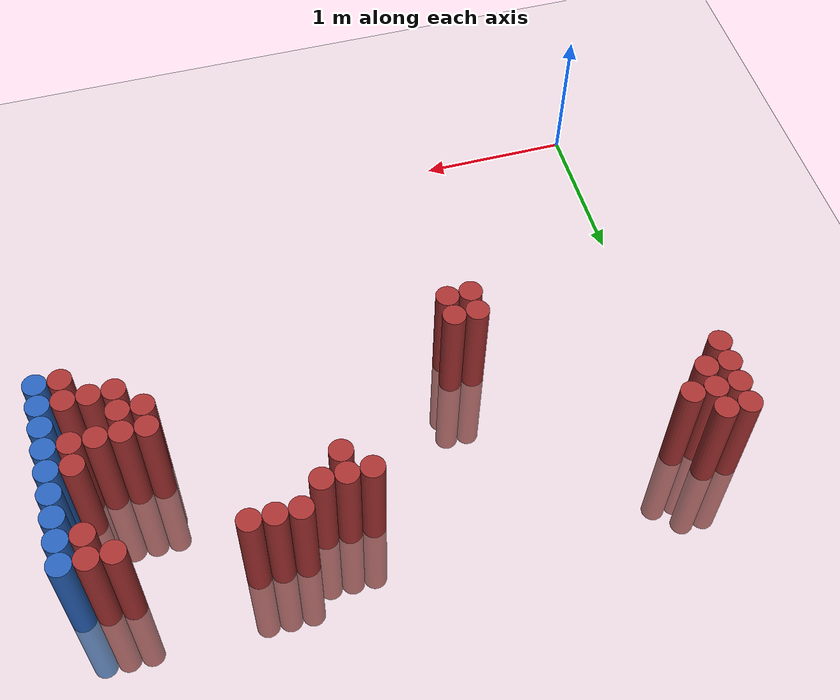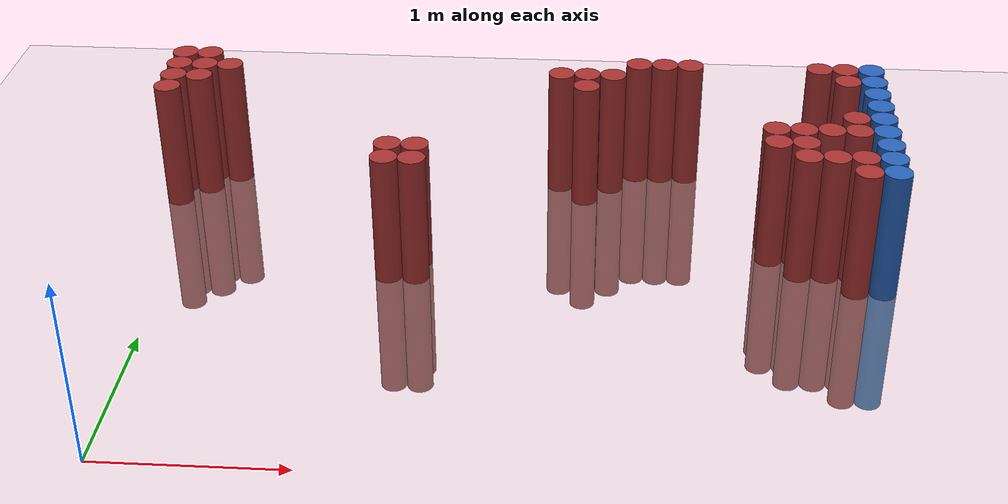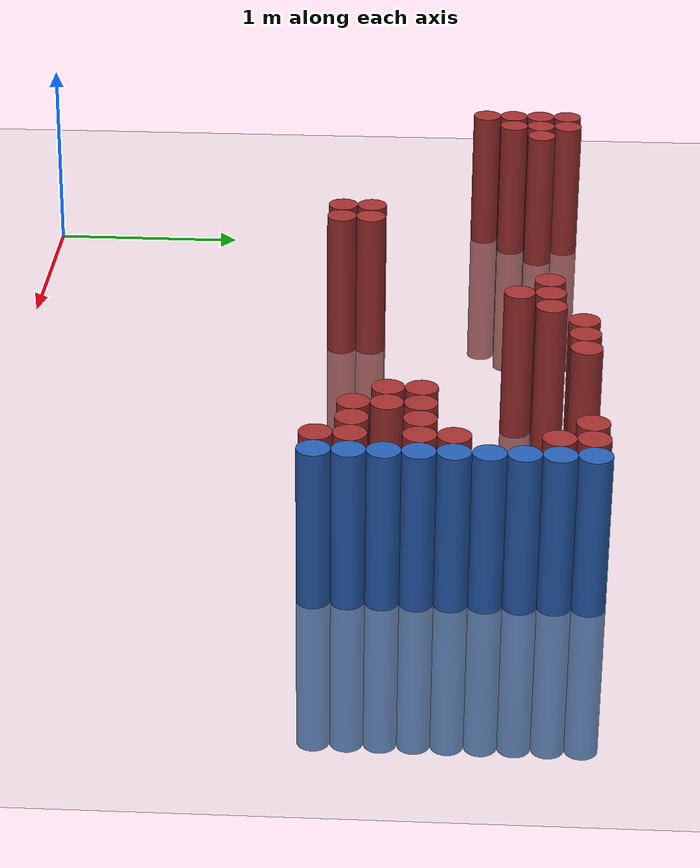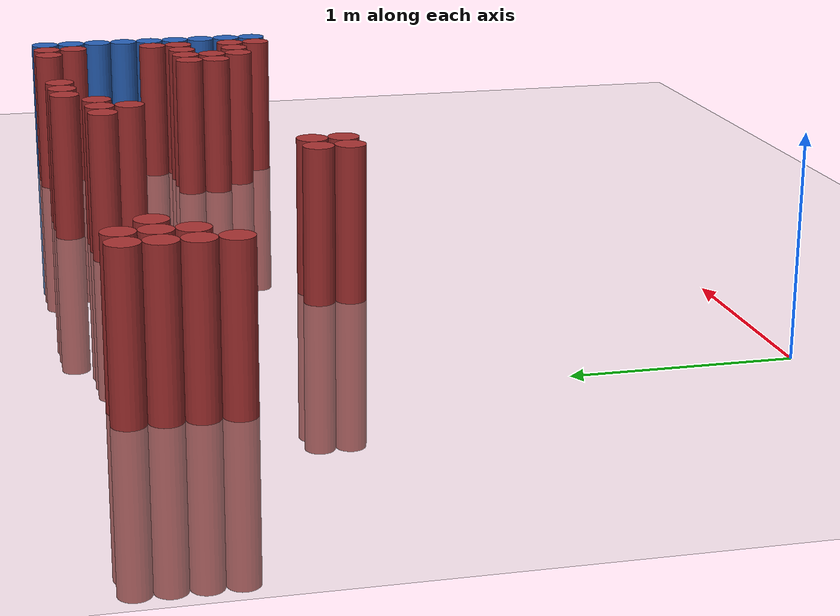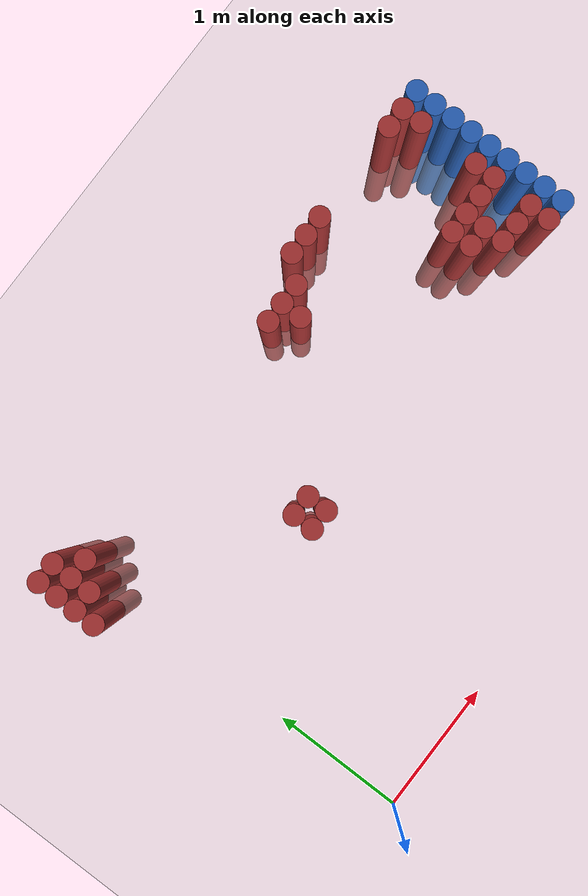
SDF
<sdf version="1.6">
 <world name="default">
  <model name="ground_plane">
   <static>1</static>
   <link name="link">
    <collision name="collision">
     <geometry><plane><normal>0 0 1</normal><size>100 100</size></plane></geometry>
     <surface><friction><ode><mu>100</mu><mu2>50</mu2></ode></friction></surface>
    </collision>
    <visual name="visual">
     <cast_shadows>0</cast_shadows>
     <geometry><plane><normal>0 0 1</normal><size>100 100</size></plane></geometry>
     <material>
      <script><uri>file://media/materials/scripts/gazebo.material</uri><name>Gazebo/Grey</name></script>
     </material>
    </visual>
   </link>
  </model>
  <model name="unit_cylinder_136">
   <static>1</static>
   <pose>3.925000 1.675000 0.000000 0.000000 0.000000 0.000000</pose>
   <link name="link">
    <inertial>
     <mass>1</mass>
     <inertia><ixx>0.145833</ixx><ixy>0</ixy><ixz>0</ixz><iyy>0.145833</iyy><iyz>0</iyz><izz>0.125</izz></inertia>
    </inertial>
    <collision name="collision">
     <geometry><cylinder><radius>0.075000</radius><length>1.5</length></cylinder></geometry>
    </collision>
    <visual name="visual">
     <geometry><cylinder><radius>0.075000</radius><length>1.5</length></cylinder></geometry>
     <material>
      <ambient>0.152000 0.379000 0.720000 1</ambient>
      <diffuse>0.152000 0.379000 0.720000 1</diffuse>
     </material>
     <material>
      <script><name>Gazebo/Grey</name><uri>file://media/materials/scripts/gazebo.material</uri></script>
     </material>
    </visual>
   </link>
  </model>
  <model name="unit_cylinder_138">
   <static>1</static>
   <pose>3.925000 1.825000 0.000000 0.000000 0.000000 0.000000</pose>
   <link name="link">
    <inertial>
     <mass>1</mass>
     <inertia><ixx>0.145833</ixx><ixy>0</ixy><ixz>0</ixz><iyy>0.145833</iyy><iyz>0</iyz><izz>0.125</izz></inertia>
    </inertial>
    <collision name="collision">
     <geometry><cylinder><radius>0.075000</radius><length>1.5</length></cylinder></geometry>
    </collision>
    <visual name="visual">
     <geometry><cylinder><radius>0.075000</radius><length>1.5</length></cylinder></geometry>
     <material>
      <ambient>0.152000 0.379000 0.720000 1</ambient>
      <diffuse>0.152000 0.379000 0.720000 1</diffuse>
     </material>
     <material>
      <script><name>Gazebo/Grey</name><uri>file://media/materials/scripts/gazebo.material</uri></script>
     </material>
    </visual>
   </link>
  </model>
  <model name="unit_cylinder_140">
   <static>1</static>
   <pose>3.925000 1.975000 0.000000 0.000000 0.000000 0.000000</pose>
   <link name="link">
    <inertial>
     <mass>1</mass>
     <inertia><ixx>0.145833</ixx><ixy>0</ixy><ixz>0</ixz><iyy>0.145833</iyy><iyz>0</iyz><izz>0.125</izz></inertia>
    </inertial>
    <collision name="collision">
     <geometry><cylinder><radius>0.075000</radius><length>1.5</length></cylinder></geometry>
    </collision>
    <visual name="visual">
     <geometry><cylinder><radius>0.075000</radius><length>1.5</length></cylinder></geometry>
     <material>
      <ambient>0.152000 0.379000 0.720000 1</ambient>
      <diffuse>0.152000 0.379000 0.720000 1</diffuse>
     </material>
     <material>
      <script><name>Gazebo/Grey</name><uri>file://media/materials/scripts/gazebo.material</uri></script>
     </material>
    </visual>
   </link>
  </model>
  <model name="unit_cylinder_142">
   <static>1</static>
   <pose>3.925000 2.125000 0.000000 0.000000 0.000000 0.000000</pose>
   <link name="link">
    <inertial>
     <mass>1</mass>
     <inertia><ixx>0.145833</ixx><ixy>0</ixy><ixz>0</ixz><iyy>0.145833</iyy><iyz>0</iyz><izz>0.125</izz></inertia>
    </inertial>
    <collision name="collision">
     <geometry><cylinder><radius>0.075000</radius><length>1.5</length></cylinder></geometry>
    </collision>
    <visual name="visual">
     <geometry><cylinder><radius>0.075000</radius><length>1.5</length></cylinder></geometry>
     <material>
      <ambient>0.152000 0.379000 0.720000 1</ambient>
      <diffuse>0.152000 0.379000 0.720000 1</diffuse>
     </material>
     <material>
      <script><name>Gazebo/Grey</name><uri>file://media/materials/scripts/gazebo.material</uri></script>
     </material>
    </visual>
   </link>
  </model>
  <model name="unit_cylinder_144">
   <static>1</static>
   <pose>3.925000 2.275000 0.000000 0.000000 0.000000 0.000000</pose>
   <link name="link">
    <inertial>
     <mass>1</mass>
     <inertia><ixx>0.145833</ixx><ixy>0</ixy><ixz>0</ixz><iyy>0.145833</iyy><iyz>0</iyz><izz>0.125</izz></inertia>
    </inertial>
    <collision name="collision">
     <geometry><cylinder><radius>0.075000</radius><length>1.5</length></cylinder></geometry>
    </collision>
    <visual name="visual">
     <geometry><cylinder><radius>0.075000</radius><length>1.5</length></cylinder></geometry>
     <material>
      <ambient>0.152000 0.379000 0.720000 1</ambient>
      <diffuse>0.152000 0.379000 0.720000 1</diffuse>
     </material>
     <material>
      <script><name>Gazebo/Grey</name><uri>file://media/materials/scripts/gazebo.material</uri></script>
     </material>
    </visual>
   </link>
  </model>
  <model name="unit_cylinder_146">
   <static>1</static>
   <pose>3.925000 2.425000 0.000000 0.000000 0.000000 0.000000</pose>
   <link name="link">
    <inertial>
     <mass>1</mass>
     <inertia><ixx>0.145833</ixx><ixy>0</ixy><ixz>0</ixz><iyy>0.145833</iyy><iyz>0</iyz><izz>0.125</izz></inertia>
    </inertial>
    <collision name="collision">
     <geometry><cylinder><radius>0.075000</radius><length>1.5</length></cylinder></geometry>
    </collision>
    <visual name="visual">
     <geometry><cylinder><radius>0.075000</radius><length>1.5</length></cylinder></geometry>
     <material>
      <ambient>0.152000 0.379000 0.720000 1</ambient>
      <diffuse>0.152000 0.379000 0.720000 1</diffuse>
     </material>
     <material>
      <script><name>Gazebo/Grey</name><uri>file://media/materials/scripts/gazebo.material</uri></script>
     </material>
    </visual>
   </link>
  </model>
  <model name="unit_cylinder_148">
   <static>1</static>
   <pose>3.925000 2.575000 0.000000 0.000000 0.000000 0.000000</pose>
   <link name="link">
    <inertial>
     <mass>1</mass>
     <inertia><ixx>0.145833</ixx><ixy>0</ixy><ixz>0</ixz><iyy>0.145833</iyy><iyz>0</iyz><izz>0.125</izz></inertia>
    </inertial>
    <collision name="collision">
     <geometry><cylinder><radius>0.075000</radius><length>1.5</length></cylinder></geometry>
    </collision>
    <visual name="visual">
     <geometry><cylinder><radius>0.075000</radius><length>1.5</length></cylinder></geometry>
     <material>
      <ambient>0.152000 0.379000 0.720000 1</ambient>
      <diffuse>0.152000 0.379000 0.720000 1</diffuse>
     </material>
     <material>
      <script><name>Gazebo/Grey</name><uri>file://media/materials/scripts/gazebo.material</uri></script>
     </material>
    </visual>
   </link>
  </model>
  <model name="unit_cylinder_150">
   <static>1</static>
   <pose>3.925000 2.725000 0.000000 0.000000 0.000000 0.000000</pose>
   <link name="link">
    <inertial>
     <mass>1</mass>
     <inertia><ixx>0.145833</ixx><ixy>0</ixy><ixz>0</ixz><iyy>0.145833</iyy><iyz>0</iyz><izz>0.125</izz></inertia>
    </inertial>
    <collision name="collision">
     <geometry><cylinder><radius>0.075000</radius><length>1.5</length></cylinder></geometry>
    </collision>
    <visual name="visual">
     <geometry><cylinder><radius>0.075000</radius><length>1.5</length></cylinder></geometry>
     <material>
      <ambient>0.152000 0.379000 0.720000 1</ambient>
      <diffuse>0.152000 0.379000 0.720000 1</diffuse>
     </material>
     <material>
      <script><name>Gazebo/Grey</name><uri>file://media/materials/scripts/gazebo.material</uri></script>
     </material>
    </visual>
   </link>
  </model>
  <model name="unit_cylinder_152">
   <static>1</static>
   <pose>3.925000 2.875000 0.000000 0.000000 0.000000 0.000000</pose>
   <link name="link">
    <inertial>
     <mass>1</mass>
     <inertia><ixx>0.145833</ixx><ixy>0</ixy><ixz>0</ixz><iyy>0.145833</iyy><iyz>0</iyz><izz>0.125</izz></inertia>
    </inertial>
    <collision name="collision">
     <geometry><cylinder><radius>0.075000</radius><length>1.5</length></cylinder></geometry>
    </collision>
    <visual name="visual">
     <geometry><cylinder><radius>0.075000</radius><length>1.5</length></cylinder></geometry>
     <material>
      <ambient>0.152000 0.379000 0.720000 1</ambient>
      <diffuse>0.152000 0.379000 0.720000 1</diffuse>
     </material>
     <material>
      <script><name>Gazebo/Grey</name><uri>file://media/materials/scripts/gazebo.material</uri></script>
     </material>
    </visual>
   </link>
  </model>
  <model name="unit_cylinder_326">
   <static>1</static>
   <pose>-0.125000 2.425000 0.000000 0.000000 0.000000 0.000000</pose>
   <link name="link">
    <inertial>
     <mass>1</mass>
     <inertia><ixx>0.145833</ixx><ixy>0</ixy><ixz>0</ixz><iyy>0.145833</iyy><iyz>0</iyz><izz>0.125</izz></inertia>
    </inertial>
    <collision name="collision">
     <geometry><cylinder><radius>0.075000</radius><length>1.5</length></cylinder></geometry>
    </collision>
    <visual name="visual">
     <geometry><cylinder><radius>0.075000</radius><length>1.5</length></cylinder></geometry>
     <material>
      <ambient>0.648000 0.192000 0.192000 1</ambient>
      <diffuse>0.648000 0.192000 0.192000 1</diffuse>
     </material>
     <material>
      <script><name>Gazebo/Grey</name><uri>file://media/materials/scripts/gazebo.material</uri></script>
     </material>
    </visual>
   </link>
  </model>
  <model name="unit_cylinder_327">
   <static>1</static>
   <pose>-0.125000 2.575000 0.000000 0.000000 0.000000 0.000000</pose>
   <link name="link">
    <inertial>
     <mass>1</mass>
     <inertia><ixx>0.145833</ixx><ixy>0</ixy><ixz>0</ixz><iyy>0.145833</iyy><iyz>0</iyz><izz>0.125</izz></inertia>
    </inertial>
    <collision name="collision">
     <geometry><cylinder><radius>0.075000</radius><length>1.5</length></cylinder></geometry>
    </collision>
    <visual name="visual">
     <geometry><cylinder><radius>0.075000</radius><length>1.5</length></cylinder></geometry>
     <material>
      <ambient>0.648000 0.192000 0.192000 1</ambient>
      <diffuse>0.648000 0.192000 0.192000 1</diffuse>
     </material>
     <material>
      <script><name>Gazebo/Grey</name><uri>file://media/materials/scripts/gazebo.material</uri></script>
     </material>
    </visual>
   </link>
  </model>
  <model name="unit_cylinder_328">
   <static>1</static>
   <pose>-0.125000 2.725000 0.000000 0.000000 0.000000 0.000000</pose>
   <link name="link">
    <inertial>
     <mass>1</mass>
     <inertia><ixx>0.145833</ixx><ixy>0</ixy><ixz>0</ixz><iyy>0.145833</iyy><iyz>0</iyz><izz>0.125</izz></inertia>
    </inertial>
    <collision name="collision">
     <geometry><cylinder><radius>0.075000</radius><length>1.5</length></cylinder></geometry>
    </collision>
    <visual name="visual">
     <geometry><cylinder><radius>0.075000</radius><length>1.5</length></cylinder></geometry>
     <material>
      <ambient>0.648000 0.192000 0.192000 1</ambient>
      <diffuse>0.648000 0.192000 0.192000 1</diffuse>
     </material>
     <material>
      <script><name>Gazebo/Grey</name><uri>file://media/materials/scripts/gazebo.material</uri></script>
     </material>
    </visual>
   </link>
  </model>
  <model name="unit_cylinder_329">
   <static>1</static>
   <pose>-0.125000 2.875000 0.000000 0.000000 0.000000 0.000000</pose>
   <link name="link">
    <inertial>
     <mass>1</mass>
     <inertia><ixx>0.145833</ixx><ixy>0</ixy><ixz>0</ixz><iyy>0.145833</iyy><iyz>0</iyz><izz>0.125</izz></inertia>
    </inertial>
    <collision name="collision">
     <geometry><cylinder><radius>0.075000</radius><length>1.5</length></cylinder></geometry>
    </collision>
    <visual name="visual">
     <geometry><cylinder><radius>0.075000</radius><length>1.5</length></cylinder></geometry>
     <material>
      <ambient>0.648000 0.192000 0.192000 1</ambient>
      <diffuse>0.648000 0.192000 0.192000 1</diffuse>
     </material>
     <material>
      <script><name>Gazebo/Grey</name><uri>file://media/materials/scripts/gazebo.material</uri></script>
     </material>
    </visual>
   </link>
  </model>
  <model name="unit_cylinder_340">
   <static>1</static>
   <pose>0.025000 2.575000 0.000000 0.000000 0.000000 0.000000</pose>
   <link name="link">
    <inertial>
     <mass>1</mass>
     <inertia><ixx>0.145833</ixx><ixy>0</ixy><ixz>0</ixz><iyy>0.145833</iyy><iyz>0</iyz><izz>0.125</izz></inertia>
    </inertial>
    <collision name="collision">
     <geometry><cylinder><radius>0.075000</radius><length>1.5</length></cylinder></geometry>
    </collision>
    <visual name="visual">
     <geometry><cylinder><radius>0.075000</radius><length>1.5</length></cylinder></geometry>
     <material>
      <ambient>0.648000 0.192000 0.192000 1</ambient>
      <diffuse>0.648000 0.192000 0.192000 1</diffuse>
     </material>
     <material>
      <script><name>Gazebo/Grey</name><uri>file://media/materials/scripts/gazebo.material</uri></script>
     </material>
    </visual>
   </link>
  </model>
  <model name="unit_cylinder_341">
   <static>1</static>
   <pose>0.025000 2.725000 0.000000 0.000000 0.000000 0.000000</pose>
   <link name="link">
    <inertial>
     <mass>1</mass>
     <inertia><ixx>0.145833</ixx><ixy>0</ixy><ixz>0</ixz><iyy>0.145833</iyy><iyz>0</iyz><izz>0.125</izz></inertia>
    </inertial>
    <collision name="collision">
     <geometry><cylinder><radius>0.075000</radius><length>1.5</length></cylinder></geometry>
    </collision>
    <visual name="visual">
     <geometry><cylinder><radius>0.075000</radius><length>1.5</length></cylinder></geometry>
     <material>
      <ambient>0.648000 0.192000 0.192000 1</ambient>
      <diffuse>0.648000 0.192000 0.192000 1</diffuse>
     </material>
     <material>
      <script><name>Gazebo/Grey</name><uri>file://media/materials/scripts/gazebo.material</uri></script>
     </material>
    </visual>
   </link>
  </model>
  <model name="unit_cylinder_342">
   <static>1</static>
   <pose>0.025000 2.875000 0.000000 0.000000 0.000000 0.000000</pose>
   <link name="link">
    <inertial>
     <mass>1</mass>
     <inertia><ixx>0.145833</ixx><ixy>0</ixy><ixz>0</ixz><iyy>0.145833</iyy><iyz>0</iyz><izz>0.125</izz></inertia>
    </inertial>
    <collision name="collision">
     <geometry><cylinder><radius>0.075000</radius><length>1.5</length></cylinder></geometry>
    </collision>
    <visual name="visual">
     <geometry><cylinder><radius>0.075000</radius><length>1.5</length></cylinder></geometry>
     <material>
      <ambient>0.648000 0.192000 0.192000 1</ambient>
      <diffuse>0.648000 0.192000 0.192000 1</diffuse>
     </material>
     <material>
      <script><name>Gazebo/Grey</name><uri>file://media/materials/scripts/gazebo.material</uri></script>
     </material>
    </visual>
   </link>
  </model>
  <model name="unit_cylinder_351">
   <static>1</static>
   <pose>0.175000 2.725000 0.000000 0.000000 0.000000 0.000000</pose>
   <link name="link">
    <inertial>
     <mass>1</mass>
     <inertia><ixx>0.145833</ixx><ixy>0</ixy><ixz>0</ixz><iyy>0.145833</iyy><iyz>0</iyz><izz>0.125</izz></inertia>
    </inertial>
    <collision name="collision">
     <geometry><cylinder><radius>0.075000</radius><length>1.5</length></cylinder></geometry>
    </collision>
    <visual name="visual">
     <geometry><cylinder><radius>0.075000</radius><length>1.5</length></cylinder></geometry>
     <material>
      <ambient>0.648000 0.192000 0.192000 1</ambient>
      <diffuse>0.648000 0.192000 0.192000 1</diffuse>
     </material>
     <material>
      <script><name>Gazebo/Grey</name><uri>file://media/materials/scripts/gazebo.material</uri></script>
     </material>
    </visual>
   </link>
  </model>
  <model name="unit_cylinder_362">
   <static>1</static>
   <pose>1.225000 1.675000 0.000000 0.000000 0.000000 0.000000</pose>
   <link name="link">
    <inertial>
     <mass>1</mass>
     <inertia><ixx>0.145833</ixx><ixy>0</ixy><ixz>0</ixz><iyy>0.145833</iyy><iyz>0</iyz><izz>0.125</izz></inertia>
    </inertial>
    <collision name="collision">
     <geometry><cylinder><radius>0.075000</radius><length>1.5</length></cylinder></geometry>
    </collision>
    <visual name="visual">
     <geometry><cylinder><radius>0.075000</radius><length>1.5</length></cylinder></geometry>
     <material>
      <ambient>0.648000 0.192000 0.192000 1</ambient>
      <diffuse>0.648000 0.192000 0.192000 1</diffuse>
     </material>
     <material>
      <script><name>Gazebo/Grey</name><uri>file://media/materials/scripts/gazebo.material</uri></script>
     </material>
    </visual>
   </link>
  </model>
  <model name="unit_cylinder_363">
   <static>1</static>
   <pose>1.225000 1.825000 0.000000 0.000000 0.000000 0.000000</pose>
   <link name="link">
    <inertial>
     <mass>1</mass>
     <inertia><ixx>0.145833</ixx><ixy>0</ixy><ixz>0</ixz><iyy>0.145833</iyy><iyz>0</iyz><izz>0.125</izz></inertia>
    </inertial>
    <collision name="collision">
     <geometry><cylinder><radius>0.075000</radius><length>1.5</length></cylinder></geometry>
    </collision>
    <visual name="visual">
     <geometry><cylinder><radius>0.075000</radius><length>1.5</length></cylinder></geometry>
     <material>
      <ambient>0.648000 0.192000 0.192000 1</ambient>
      <diffuse>0.648000 0.192000 0.192000 1</diffuse>
     </material>
     <material>
      <script><name>Gazebo/Grey</name><uri>file://media/materials/scripts/gazebo.material</uri></script>
     </material>
    </visual>
   </link>
  </model>
  <model name="unit_cylinder_370">
   <static>1</static>
   <pose>1.375000 1.675000 0.000000 0.000000 0.000000 0.000000</pose>
   <link name="link">
    <inertial>
     <mass>1</mass>
     <inertia><ixx>0.145833</ixx><ixy>0</ixy><ixz>0</ixz><iyy>0.145833</iyy><iyz>0</iyz><izz>0.125</izz></inertia>
    </inertial>
    <collision name="collision">
     <geometry><cylinder><radius>0.075000</radius><length>1.5</length></cylinder></geometry>
    </collision>
    <visual name="visual">
     <geometry><cylinder><radius>0.075000</radius><length>1.5</length></cylinder></geometry>
     <material>
      <ambient>0.648000 0.192000 0.192000 1</ambient>
      <diffuse>0.648000 0.192000 0.192000 1</diffuse>
     </material>
     <material>
      <script><name>Gazebo/Grey</name><uri>file://media/materials/scripts/gazebo.material</uri></script>
     </material>
    </visual>
   </link>
  </model>
  <model name="unit_cylinder_371">
   <static>1</static>
   <pose>1.375000 1.825000 0.000000 0.000000 0.000000 0.000000</pose>
   <link name="link">
    <inertial>
     <mass>1</mass>
     <inertia><ixx>0.145833</ixx><ixy>0</ixy><ixz>0</ixz><iyy>0.145833</iyy><iyz>0</iyz><izz>0.125</izz></inertia>
    </inertial>
    <collision name="collision">
     <geometry><cylinder><radius>0.075000</radius><length>1.5</length></cylinder></geometry>
    </collision>
    <visual name="visual">
     <geometry><cylinder><radius>0.075000</radius><length>1.5</length></cylinder></geometry>
     <material>
      <ambient>0.648000 0.192000 0.192000 1</ambient>
      <diffuse>0.648000 0.192000 0.192000 1</diffuse>
     </material>
     <material>
      <script><name>Gazebo/Grey</name><uri>file://media/materials/scripts/gazebo.material</uri></script>
     </material>
    </visual>
   </link>
  </model>
  <model name="unit_cylinder_395">
   <static>1</static>
   <pose>2.125000 2.725000 0.000000 0.000000 0.000000 0.000000</pose>
   <link name="link">
    <inertial>
     <mass>1</mass>
     <inertia><ixx>0.145833</ixx><ixy>0</ixy><ixz>0</ixz><iyy>0.145833</iyy><iyz>0</iyz><izz>0.125</izz></inertia>
    </inertial>
    <collision name="collision">
     <geometry><cylinder><radius>0.075000</radius><length>1.5</length></cylinder></geometry>
    </collision>
    <visual name="visual">
     <geometry><cylinder><radius>0.075000</radius><length>1.5</length></cylinder></geometry>
     <material>
      <ambient>0.648000 0.192000 0.192000 1</ambient>
      <diffuse>0.648000 0.192000 0.192000 1</diffuse>
     </material>
     <material>
      <script><name>Gazebo/Grey</name><uri>file://media/materials/scripts/gazebo.material</uri></script>
     </material>
    </visual>
   </link>
  </model>
  <model name="unit_cylinder_399">
   <static>1</static>
   <pose>2.275000 2.575000 0.000000 0.000000 0.000000 0.000000</pose>
   <link name="link">
    <inertial>
     <mass>1</mass>
     <inertia><ixx>0.145833</ixx><ixy>0</ixy><ixz>0</ixz><iyy>0.145833</iyy><iyz>0</iyz><izz>0.125</izz></inertia>
    </inertial>
    <collision name="collision">
     <geometry><cylinder><radius>0.075000</radius><length>1.5</length></cylinder></geometry>
    </collision>
    <visual name="visual">
     <geometry><cylinder><radius>0.075000</radius><length>1.5</length></cylinder></geometry>
     <material>
      <ambient>0.648000 0.192000 0.192000 1</ambient>
      <diffuse>0.648000 0.192000 0.192000 1</diffuse>
     </material>
     <material>
      <script><name>Gazebo/Grey</name><uri>file://media/materials/scripts/gazebo.material</uri></script>
     </material>
    </visual>
   </link>
  </model>
  <model name="unit_cylinder_400">
   <static>1</static>
   <pose>2.275000 2.725000 0.000000 0.000000 0.000000 0.000000</pose>
   <link name="link">
    <inertial>
     <mass>1</mass>
     <inertia><ixx>0.145833</ixx><ixy>0</ixy><ixz>0</ixz><iyy>0.145833</iyy><iyz>0</iyz><izz>0.125</izz></inertia>
    </inertial>
    <collision name="collision">
     <geometry><cylinder><radius>0.075000</radius><length>1.5</length></cylinder></geometry>
    </collision>
    <visual name="visual">
     <geometry><cylinder><radius>0.075000</radius><length>1.5</length></cylinder></geometry>
     <material>
      <ambient>0.648000 0.192000 0.192000 1</ambient>
      <diffuse>0.648000 0.192000 0.192000 1</diffuse>
     </material>
     <material>
      <script><name>Gazebo/Grey</name><uri>file://media/materials/scripts/gazebo.material</uri></script>
     </material>
    </visual>
   </link>
  </model>
  <model name="unit_cylinder_402">
   <static>1</static>
   <pose>2.425000 2.725000 0.000000 0.000000 0.000000 0.000000</pose>
   <link name="link">
    <inertial>
     <mass>1</mass>
     <inertia><ixx>0.145833</ixx><ixy>0</ixy><ixz>0</ixz><iyy>0.145833</iyy><iyz>0</iyz><izz>0.125</izz></inertia>
    </inertial>
    <collision name="collision">
     <geometry><cylinder><radius>0.075000</radius><length>1.5</length></cylinder></geometry>
    </collision>
    <visual name="visual">
     <geometry><cylinder><radius>0.075000</radius><length>1.5</length></cylinder></geometry>
     <material>
      <ambient>0.648000 0.192000 0.192000 1</ambient>
      <diffuse>0.648000 0.192000 0.192000 1</diffuse>
     </material>
     <material>
      <script><name>Gazebo/Grey</name><uri>file://media/materials/scripts/gazebo.material</uri></script>
     </material>
    </visual>
   </link>
  </model>
  <model name="unit_cylinder_405">
   <static>1</static>
   <pose>2.575000 2.875000 0.000000 0.000000 0.000000 0.000000</pose>
   <link name="link">
    <inertial>
     <mass>1</mass>
     <inertia><ixx>0.145833</ixx><ixy>0</ixy><ixz>0</ixz><iyy>0.145833</iyy><iyz>0</iyz><izz>0.125</izz></inertia>
    </inertial>
    <collision name="collision">
     <geometry><cylinder><radius>0.075000</radius><length>1.5</length></cylinder></geometry>
    </collision>
    <visual name="visual">
     <geometry><cylinder><radius>0.075000</radius><length>1.5</length></cylinder></geometry>
     <material>
      <ambient>0.648000 0.192000 0.192000 1</ambient>
      <diffuse>0.648000 0.192000 0.192000 1</diffuse>
     </material>
     <material>
      <script><name>Gazebo/Grey</name><uri>file://media/materials/scripts/gazebo.material</uri></script>
     </material>
    </visual>
   </link>
  </model>
  <model name="unit_cylinder_406">
   <static>1</static>
   <pose>2.725000 2.875000 0.000000 0.000000 0.000000 0.000000</pose>
   <link name="link">
    <inertial>
     <mass>1</mass>
     <inertia><ixx>0.145833</ixx><ixy>0</ixy><ixz>0</ixz><iyy>0.145833</iyy><iyz>0</iyz><izz>0.125</izz></inertia>
    </inertial>
    <collision name="collision">
     <geometry><cylinder><radius>0.075000</radius><length>1.5</length></cylinder></geometry>
    </collision>
    <visual name="visual">
     <geometry><cylinder><radius>0.075000</radius><length>1.5</length></cylinder></geometry>
     <material>
      <ambient>0.648000 0.192000 0.192000 1</ambient>
      <diffuse>0.648000 0.192000 0.192000 1</diffuse>
     </material>
     <material>
      <script><name>Gazebo/Grey</name><uri>file://media/materials/scripts/gazebo.material</uri></script>
     </material>
    </visual>
   </link>
  </model>
  <model name="unit_cylinder_412">
   <static>1</static>
   <pose>2.875000 2.875000 0.000000 0.000000 0.000000 0.000000</pose>
   <link name="link">
    <inertial>
     <mass>1</mass>
     <inertia><ixx>0.145833</ixx><ixy>0</ixy><ixz>0</ixz><iyy>0.145833</iyy><iyz>0</iyz><izz>0.125</izz></inertia>
    </inertial>
    <collision name="collision">
     <geometry><cylinder><radius>0.075000</radius><length>1.5</length></cylinder></geometry>
    </collision>
    <visual name="visual">
     <geometry><cylinder><radius>0.075000</radius><length>1.5</length></cylinder></geometry>
     <material>
      <ambient>0.648000 0.192000 0.192000 1</ambient>
      <diffuse>0.648000 0.192000 0.192000 1</diffuse>
     </material>
     <material>
      <script><name>Gazebo/Grey</name><uri>file://media/materials/scripts/gazebo.material</uri></script>
     </material>
    </visual>
   </link>
  </model>
  <model name="unit_cylinder_419">
   <static>1</static>
   <pose>3.325000 1.975000 0.000000 0.000000 0.000000 0.000000</pose>
   <link name="link">
    <inertial>
     <mass>1</mass>
     <inertia><ixx>0.145833</ixx><ixy>0</ixy><ixz>0</ixz><iyy>0.145833</iyy><iyz>0</iyz><izz>0.125</izz></inertia>
    </inertial>
    <collision name="collision">
     <geometry><cylinder><radius>0.075000</radius><length>1.5</length></cylinder></geometry>
    </collision>
    <visual name="visual">
     <geometry><cylinder><radius>0.075000</radius><length>1.5</length></cylinder></geometry>
     <material>
      <ambient>0.648000 0.192000 0.192000 1</ambient>
      <diffuse>0.648000 0.192000 0.192000 1</diffuse>
     </material>
     <material>
      <script><name>Gazebo/Grey</name><uri>file://media/materials/scripts/gazebo.material</uri></script>
     </material>
    </visual>
   </link>
  </model>
  <model name="unit_cylinder_420">
   <static>1</static>
   <pose>3.325000 2.125000 0.000000 0.000000 0.000000 0.000000</pose>
   <link name="link">
    <inertial>
     <mass>1</mass>
     <inertia><ixx>0.145833</ixx><ixy>0</ixy><ixz>0</ixz><iyy>0.145833</iyy><iyz>0</iyz><izz>0.125</izz></inertia>
    </inertial>
    <collision name="collision">
     <geometry><cylinder><radius>0.075000</radius><length>1.5</length></cylinder></geometry>
    </collision>
    <visual name="visual">
     <geometry><cylinder><radius>0.075000</radius><length>1.5</length></cylinder></geometry>
     <material>
      <ambient>0.648000 0.192000 0.192000 1</ambient>
      <diffuse>0.648000 0.192000 0.192000 1</diffuse>
     </material>
     <material>
      <script><name>Gazebo/Grey</name><uri>file://media/materials/scripts/gazebo.material</uri></script>
     </material>
    </visual>
   </link>
  </model>
  <model name="unit_cylinder_424">
   <static>1</static>
   <pose>3.475000 1.825000 0.000000 0.000000 0.000000 0.000000</pose>
   <link name="link">
    <inertial>
     <mass>1</mass>
     <inertia><ixx>0.145833</ixx><ixy>0</ixy><ixz>0</ixz><iyy>0.145833</iyy><iyz>0</iyz><izz>0.125</izz></inertia>
    </inertial>
    <collision name="collision">
     <geometry><cylinder><radius>0.075000</radius><length>1.5</length></cylinder></geometry>
    </collision>
    <visual name="visual">
     <geometry><cylinder><radius>0.075000</radius><length>1.5</length></cylinder></geometry>
     <material>
      <ambient>0.648000 0.192000 0.192000 1</ambient>
      <diffuse>0.648000 0.192000 0.192000 1</diffuse>
     </material>
     <material>
      <script><name>Gazebo/Grey</name><uri>file://media/materials/scripts/gazebo.material</uri></script>
     </material>
    </visual>
   </link>
  </model>
  <model name="unit_cylinder_425">
   <static>1</static>
   <pose>3.475000 1.975000 0.000000 0.000000 0.000000 0.000000</pose>
   <link name="link">
    <inertial>
     <mass>1</mass>
     <inertia><ixx>0.145833</ixx><ixy>0</ixy><ixz>0</ixz><iyy>0.145833</iyy><iyz>0</iyz><izz>0.125</izz></inertia>
    </inertial>
    <collision name="collision">
     <geometry><cylinder><radius>0.075000</radius><length>1.5</length></cylinder></geometry>
    </collision>
    <visual name="visual">
     <geometry><cylinder><radius>0.075000</radius><length>1.5</length></cylinder></geometry>
     <material>
      <ambient>0.648000 0.192000 0.192000 1</ambient>
      <diffuse>0.648000 0.192000 0.192000 1</diffuse>
     </material>
     <material>
      <script><name>Gazebo/Grey</name><uri>file://media/materials/scripts/gazebo.material</uri></script>
     </material>
    </visual>
   </link>
  </model>
  <model name="unit_cylinder_426">
   <static>1</static>
   <pose>3.475000 2.125000 0.000000 0.000000 0.000000 0.000000</pose>
   <link name="link">
    <inertial>
     <mass>1</mass>
     <inertia><ixx>0.145833</ixx><ixy>0</ixy><ixz>0</ixz><iyy>0.145833</iyy><iyz>0</iyz><izz>0.125</izz></inertia>
    </inertial>
    <collision name="collision">
     <geometry><cylinder><radius>0.075000</radius><length>1.5</length></cylinder></geometry>
    </collision>
    <visual name="visual">
     <geometry><cylinder><radius>0.075000</radius><length>1.5</length></cylinder></geometry>
     <material>
      <ambient>0.648000 0.192000 0.192000 1</ambient>
      <diffuse>0.648000 0.192000 0.192000 1</diffuse>
     </material>
     <material>
      <script><name>Gazebo/Grey</name><uri>file://media/materials/scripts/gazebo.material</uri></script>
     </material>
    </visual>
   </link>
  </model>
  <model name="unit_cylinder_431">
   <static>1</static>
   <pose>3.625000 1.825000 0.000000 0.000000 0.000000 0.000000</pose>
   <link name="link">
    <inertial>
     <mass>1</mass>
     <inertia><ixx>0.145833</ixx><ixy>0</ixy><ixz>0</ixz><iyy>0.145833</iyy><iyz>0</iyz><izz>0.125</izz></inertia>
    </inertial>
    <collision name="collision">
     <geometry><cylinder><radius>0.075000</radius><length>1.5</length></cylinder></geometry>
    </collision>
    <visual name="visual">
     <geometry><cylinder><radius>0.075000</radius><length>1.5</length></cylinder></geometry>
     <material>
      <ambient>0.648000 0.192000 0.192000 1</ambient>
      <diffuse>0.648000 0.192000 0.192000 1</diffuse>
     </material>
     <material>
      <script><name>Gazebo/Grey</name><uri>file://media/materials/scripts/gazebo.material</uri></script>
     </material>
    </visual>
   </link>
  </model>
  <model name="unit_cylinder_432">
   <static>1</static>
   <pose>3.625000 2.125000 0.000000 0.000000 0.000000 0.000000</pose>
   <link name="link">
    <inertial>
     <mass>1</mass>
     <inertia><ixx>0.145833</ixx><ixy>0</ixy><ixz>0</ixz><iyy>0.145833</iyy><iyz>0</iyz><izz>0.125</izz></inertia>
    </inertial>
    <collision name="collision">
     <geometry><cylinder><radius>0.075000</radius><length>1.5</length></cylinder></geometry>
    </collision>
    <visual name="visual">
     <geometry><cylinder><radius>0.075000</radius><length>1.5</length></cylinder></geometry>
     <material>
      <ambient>0.648000 0.192000 0.192000 1</ambient>
      <diffuse>0.648000 0.192000 0.192000 1</diffuse>
     </material>
     <material>
      <script><name>Gazebo/Grey</name><uri>file://media/materials/scripts/gazebo.material</uri></script>
     </material>
    </visual>
   </link>
  </model>
  <model name="unit_cylinder_433">
   <static>1</static>
   <pose>3.625000 2.875000 0.000000 0.000000 0.000000 0.000000</pose>
   <link name="link">
    <inertial>
     <mass>1</mass>
     <inertia><ixx>0.145833</ixx><ixy>0</ixy><ixz>0</ixz><iyy>0.145833</iyy><iyz>0</iyz><izz>0.125</izz></inertia>
    </inertial>
    <collision name="collision">
     <geometry><cylinder><radius>0.075000</radius><length>1.5</length></cylinder></geometry>
    </collision>
    <visual name="visual">
     <geometry><cylinder><radius>0.075000</radius><length>1.5</length></cylinder></geometry>
     <material>
      <ambient>0.648000 0.192000 0.192000 1</ambient>
      <diffuse>0.648000 0.192000 0.192000 1</diffuse>
     </material>
     <material>
      <script><name>Gazebo/Grey</name><uri>file://media/materials/scripts/gazebo.material</uri></script>
     </material>
    </visual>
   </link>
  </model>
  <model name="unit_cylinder_444">
   <static>1</static>
   <pose>3.775000 1.675000 0.000000 0.000000 0.000000 0.000000</pose>
   <link name="link">
    <inertial>
     <mass>1</mass>
     <inertia><ixx>0.145833</ixx><ixy>0</ixy><ixz>0</ixz><iyy>0.145833</iyy><iyz>0</iyz><izz>0.125</izz></inertia>
    </inertial>
    <collision name="collision">
     <geometry><cylinder><radius>0.075000</radius><length>1.5</length></cylinder></geometry>
    </collision>
    <visual name="visual">
     <geometry><cylinder><radius>0.075000</radius><length>1.5</length></cylinder></geometry>
     <material>
      <ambient>0.648000 0.192000 0.192000 1</ambient>
      <diffuse>0.648000 0.192000 0.192000 1</diffuse>
     </material>
     <material>
      <script><name>Gazebo/Grey</name><uri>file://media/materials/scripts/gazebo.material</uri></script>
     </material>
    </visual>
   </link>
  </model>
  <model name="unit_cylinder_445">
   <static>1</static>
   <pose>3.775000 1.825000 0.000000 0.000000 0.000000 0.000000</pose>
   <link name="link">
    <inertial>
     <mass>1</mass>
     <inertia><ixx>0.145833</ixx><ixy>0</ixy><ixz>0</ixz><iyy>0.145833</iyy><iyz>0</iyz><izz>0.125</izz></inertia>
    </inertial>
    <collision name="collision">
     <geometry><cylinder><radius>0.075000</radius><length>1.5</length></cylinder></geometry>
    </collision>
    <visual name="visual">
     <geometry><cylinder><radius>0.075000</radius><length>1.5</length></cylinder></geometry>
     <material>
      <ambient>0.648000 0.192000 0.192000 1</ambient>
      <diffuse>0.648000 0.192000 0.192000 1</diffuse>
     </material>
     <material>
      <script><name>Gazebo/Grey</name><uri>file://media/materials/scripts/gazebo.material</uri></script>
     </material>
    </visual>
   </link>
  </model>
  <model name="unit_cylinder_446">
   <static>1</static>
   <pose>3.775000 2.125000 0.000000 0.000000 0.000000 0.000000</pose>
   <link name="link">
    <inertial>
     <mass>1</mass>
     <inertia><ixx>0.145833</ixx><ixy>0</ixy><ixz>0</ixz><iyy>0.145833</iyy><iyz>0</iyz><izz>0.125</izz></inertia>
    </inertial>
    <collision name="collision">
     <geometry><cylinder><radius>0.075000</radius><length>1.5</length></cylinder></geometry>
    </collision>
    <visual name="visual">
     <geometry><cylinder><radius>0.075000</radius><length>1.5</length></cylinder></geometry>
     <material>
      <ambient>0.648000 0.192000 0.192000 1</ambient>
      <diffuse>0.648000 0.192000 0.192000 1</diffuse>
     </material>
     <material>
      <script><name>Gazebo/Grey</name><uri>file://media/materials/scripts/gazebo.material</uri></script>
     </material>
    </visual>
   </link>
  </model>
  <model name="unit_cylinder_447">
   <static>1</static>
   <pose>3.775000 2.275000 0.000000 0.000000 0.000000 0.000000</pose>
   <link name="link">
    <inertial>
     <mass>1</mass>
     <inertia><ixx>0.145833</ixx><ixy>0</ixy><ixz>0</ixz><iyy>0.145833</iyy><iyz>0</iyz><izz>0.125</izz></inertia>
    </inertial>
    <collision name="collision">
     <geometry><cylinder><radius>0.075000</radius><length>1.5</length></cylinder></geometry>
    </collision>
    <visual name="visual">
     <geometry><cylinder><radius>0.075000</radius><length>1.5</length></cylinder></geometry>
     <material>
      <ambient>0.648000 0.192000 0.192000 1</ambient>
      <diffuse>0.648000 0.192000 0.192000 1</diffuse>
     </material>
     <material>
      <script><name>Gazebo/Grey</name><uri>file://media/materials/scripts/gazebo.material</uri></script>
     </material>
    </visual>
   </link>
  </model>
  <model name="unit_cylinder_448">
   <static>1</static>
   <pose>3.775000 2.725000 0.000000 0.000000 0.000000 0.000000</pose>
   <link name="link">
    <inertial>
     <mass>1</mass>
     <inertia><ixx>0.145833</ixx><ixy>0</ixy><ixz>0</ixz><iyy>0.145833</iyy><iyz>0</iyz><izz>0.125</izz></inertia>
    </inertial>
    <collision name="collision">
     <geometry><cylinder><radius>0.075000</radius><length>1.5</length></cylinder></geometry>
    </collision>
    <visual name="visual">
     <geometry><cylinder><radius>0.075000</radius><length>1.5</length></cylinder></geometry>
     <material>
      <ambient>0.648000 0.192000 0.192000 1</ambient>
      <diffuse>0.648000 0.192000 0.192000 1</diffuse>
     </material>
     <material>
      <script><name>Gazebo/Grey</name><uri>file://media/materials/scripts/gazebo.material</uri></script>
     </material>
    </visual>
   </link>
  </model>
  <model name="unit_cylinder_449">
   <static>1</static>
   <pose>3.775000 2.875000 0.000000 0.000000 0.000000 0.000000</pose>
   <link name="link">
    <inertial>
     <mass>1</mass>
     <inertia><ixx>0.145833</ixx><ixy>0</ixy><ixz>0</ixz><iyy>0.145833</iyy><iyz>0</iyz><izz>0.125</izz></inertia>
    </inertial>
    <collision name="collision">
     <geometry><cylinder><radius>0.075000</radius><length>1.5</length></cylinder></geometry>
    </collision>
    <visual name="visual">
     <geometry><cylinder><radius>0.075000</radius><length>1.5</length></cylinder></geometry>
     <material>
      <ambient>0.648000 0.192000 0.192000 1</ambient>
      <diffuse>0.648000 0.192000 0.192000 1</diffuse>
     </material>
     <material>
      <script><name>Gazebo/Grey</name><uri>file://media/materials/scripts/gazebo.material</uri></script>
     </material>
    </visual>
   </link>
  </model>
  <model name="unit_cylinder_483">
   <static>1</static>
   <pose>3.925000 1.675000 0.000000 0.000000 0.000000 0.000000</pose>
   <link name="link">
    <inertial>
     <mass>1</mass>
     <inertia><ixx>0.145833</ixx><ixy>0</ixy><ixz>0</ixz><iyy>0.145833</iyy><iyz>0</iyz><izz>0.125</izz></inertia>
    </inertial>
    <collision name="collision">
     <geometry><cylinder><radius>0.075000</radius><length>1.5</length></cylinder></geometry>
    </collision>
    <visual name="visual">
     <geometry><cylinder><radius>0.075000</radius><length>1.5</length></cylinder></geometry>
     <material>
      <ambient>0.152000 0.379000 0.720000 1</ambient>
      <diffuse>0.152000 0.379000 0.720000 1</diffuse>
     </material>
     <material>
      <script><name>Gazebo/Grey</name><uri>file://media/materials/scripts/gazebo.material</uri></script>
     </material>
    </visual>
   </link>
  </model>
  <model name="unit_cylinder_484">
   <static>1</static>
   <pose>3.925000 1.825000 0.000000 0.000000 0.000000 0.000000</pose>
   <link name="link">
    <inertial>
     <mass>1</mass>
     <inertia><ixx>0.145833</ixx><ixy>0</ixy><ixz>0</ixz><iyy>0.145833</iyy><iyz>0</iyz><izz>0.125</izz></inertia>
    </inertial>
    <collision name="collision">
     <geometry><cylinder><radius>0.075000</radius><length>1.5</length></cylinder></geometry>
    </collision>
    <visual name="visual">
     <geometry><cylinder><radius>0.075000</radius><length>1.5</length></cylinder></geometry>
     <material>
      <ambient>0.152000 0.379000 0.720000 1</ambient>
      <diffuse>0.152000 0.379000 0.720000 1</diffuse>
     </material>
     <material>
      <script><name>Gazebo/Grey</name><uri>file://media/materials/scripts/gazebo.material</uri></script>
     </material>
    </visual>
   </link>
  </model>
  <model name="unit_cylinder_485">
   <static>1</static>
   <pose>3.925000 1.975000 0.000000 0.000000 0.000000 0.000000</pose>
   <link name="link">
    <inertial>
     <mass>1</mass>
     <inertia><ixx>0.145833</ixx><ixy>0</ixy><ixz>0</ixz><iyy>0.145833</iyy><iyz>0</iyz><izz>0.125</izz></inertia>
    </inertial>
    <collision name="collision">
     <geometry><cylinder><radius>0.075000</radius><length>1.5</length></cylinder></geometry>
    </collision>
    <visual name="visual">
     <geometry><cylinder><radius>0.075000</radius><length>1.5</length></cylinder></geometry>
     <material>
      <ambient>0.152000 0.379000 0.720000 1</ambient>
      <diffuse>0.152000 0.379000 0.720000 1</diffuse>
     </material>
     <material>
      <script><name>Gazebo/Grey</name><uri>file://media/materials/scripts/gazebo.material</uri></script>
     </material>
    </visual>
   </link>
  </model>
  <model name="unit_cylinder_486">
   <static>1</static>
   <pose>3.925000 2.125000 0.000000 0.000000 0.000000 0.000000</pose>
   <link name="link">
    <inertial>
     <mass>1</mass>
     <inertia><ixx>0.145833</ixx><ixy>0</ixy><ixz>0</ixz><iyy>0.145833</iyy><iyz>0</iyz><izz>0.125</izz></inertia>
    </inertial>
    <collision name="collision">
     <geometry><cylinder><radius>0.075000</radius><length>1.5</length></cylinder></geometry>
    </collision>
    <visual name="visual">
     <geometry><cylinder><radius>0.075000</radius><length>1.5</length></cylinder></geometry>
     <material>
      <ambient>0.152000 0.379000 0.720000 1</ambient>
      <diffuse>0.152000 0.379000 0.720000 1</diffuse>
     </material>
     <material>
      <script><name>Gazebo/Grey</name><uri>file://media/materials/scripts/gazebo.material</uri></script>
     </material>
    </visual>
   </link>
  </model>
  <model name="unit_cylinder_487">
   <static>1</static>
   <pose>3.925000 2.275000 0.000000 0.000000 0.000000 0.000000</pose>
   <link name="link">
    <inertial>
     <mass>1</mass>
     <inertia><ixx>0.145833</ixx><ixy>0</ixy><ixz>0</ixz><iyy>0.145833</iyy><iyz>0</iyz><izz>0.125</izz></inertia>
    </inertial>
    <collision name="collision">
     <geometry><cylinder><radius>0.075000</radius><length>1.5</length></cylinder></geometry>
    </collision>
    <visual name="visual">
     <geometry><cylinder><radius>0.075000</radius><length>1.5</length></cylinder></geometry>
     <material>
      <ambient>0.152000 0.379000 0.720000 1</ambient>
      <diffuse>0.152000 0.379000 0.720000 1</diffuse>
     </material>
     <material>
      <script><name>Gazebo/Grey</name><uri>file://media/materials/scripts/gazebo.material</uri></script>
     </material>
    </visual>
   </link>
  </model>
  <model name="unit_cylinder_488">
   <static>1</static>
   <pose>3.925000 2.425000 0.000000 0.000000 0.000000 0.000000</pose>
   <link name="link">
    <inertial>
     <mass>1</mass>
     <inertia><ixx>0.145833</ixx><ixy>0</ixy><ixz>0</ixz><iyy>0.145833</iyy><iyz>0</iyz><izz>0.125</izz></inertia>
    </inertial>
    <collision name="collision">
     <geometry><cylinder><radius>0.075000</radius><length>1.5</length></cylinder></geometry>
    </collision>
    <visual name="visual">
     <geometry><cylinder><radius>0.075000</radius><length>1.5</length></cylinder></geometry>
     <material>
      <ambient>0.152000 0.379000 0.720000 1</ambient>
      <diffuse>0.152000 0.379000 0.720000 1</diffuse>
     </material>
     <material>
      <script><name>Gazebo/Grey</name><uri>file://media/materials/scripts/gazebo.material</uri></script>
     </material>
    </visual>
   </link>
  </model>
  <model name="unit_cylinder_489">
   <static>1</static>
   <pose>3.925000 2.575000 0.000000 0.000000 0.000000 0.000000</pose>
   <link name="link">
    <inertial>
     <mass>1</mass>
     <inertia><ixx>0.145833</ixx><ixy>0</ixy><ixz>0</ixz><iyy>0.145833</iyy><iyz>0</iyz><izz>0.125</izz></inertia>
    </inertial>
    <collision name="collision">
     <geometry><cylinder><radius>0.075000</radius><length>1.5</length></cylinder></geometry>
    </collision>
    <visual name="visual">
     <geometry><cylinder><radius>0.075000</radius><length>1.5</length></cylinder></geometry>
     <material>
      <ambient>0.152000 0.379000 0.720000 1</ambient>
      <diffuse>0.152000 0.379000 0.720000 1</diffuse>
     </material>
     <material>
      <script><name>Gazebo/Grey</name><uri>file://media/materials/scripts/gazebo.material</uri></script>
     </material>
    </visual>
   </link>
  </model>
  <model name="unit_cylinder_490">
   <static>1</static>
   <pose>3.925000 2.725000 0.000000 0.000000 0.000000 0.000000</pose>
   <link name="link">
    <inertial>
     <mass>1</mass>
     <inertia><ixx>0.145833</ixx><ixy>0</ixy><ixz>0</ixz><iyy>0.145833</iyy><iyz>0</iyz><izz>0.125</izz></inertia>
    </inertial>
    <collision name="collision">
     <geometry><cylinder><radius>0.075000</radius><length>1.5</length></cylinder></geometry>
    </collision>
    <visual name="visual">
     <geometry><cylinder><radius>0.075000</radius><length>1.5</length></cylinder></geometry>
     <material>
      <ambient>0.152000 0.379000 0.720000 1</ambient>
      <diffuse>0.152000 0.379000 0.720000 1</diffuse>
     </material>
     <material>
      <script><name>Gazebo/Grey</name><uri>file://media/materials/scripts/gazebo.material</uri></script>
     </material>
    </visual>
   </link>
  </model>
  <model name="unit_cylinder_491">
   <static>1</static>
   <pose>3.925000 2.875000 0.000000 0.000000 0.000000 0.000000</pose>
   <link name="link">
    <inertial>
     <mass>1</mass>
     <inertia><ixx>0.145833</ixx><ixy>0</ixy><ixz>0</ixz><iyy>0.145833</iyy><iyz>0</iyz><izz>0.125</izz></inertia>
    </inertial>
    <collision name="collision">
     <geometry><cylinder><radius>0.075000</radius><length>1.5</length></cylinder></geometry>
    </collision>
    <visual name="visual">
     <geometry><cylinder><radius>0.075000</radius><length>1.5</length></cylinder></geometry>
     <material>
      <ambient>0.152000 0.379000 0.720000 1</ambient>
      <diffuse>0.152000 0.379000 0.720000 1</diffuse>
     </material>
     <material>
      <script><name>Gazebo/Grey</name><uri>file://media/materials/scripts/gazebo.material</uri></script>
     </material>
    </visual>
   </link>
  </model>
 </world>
</sdf>
